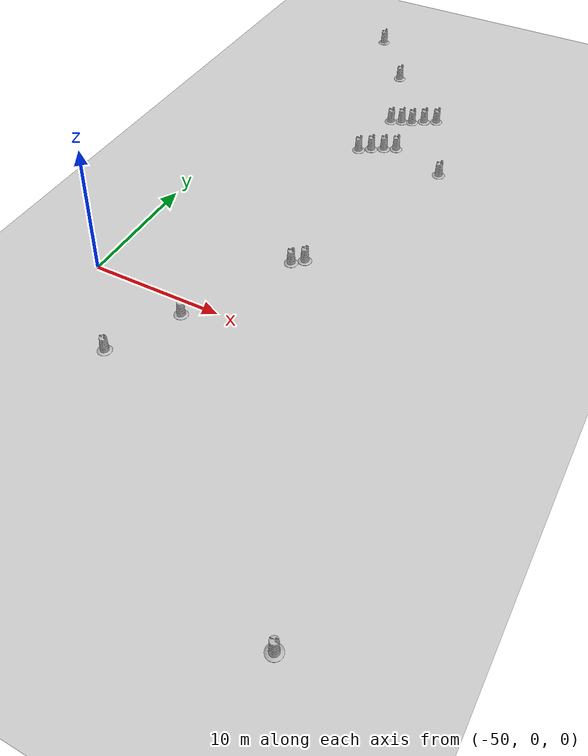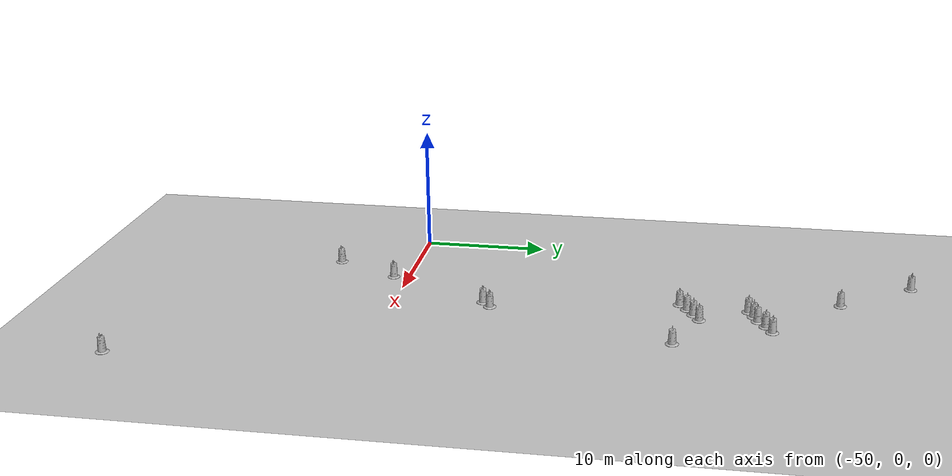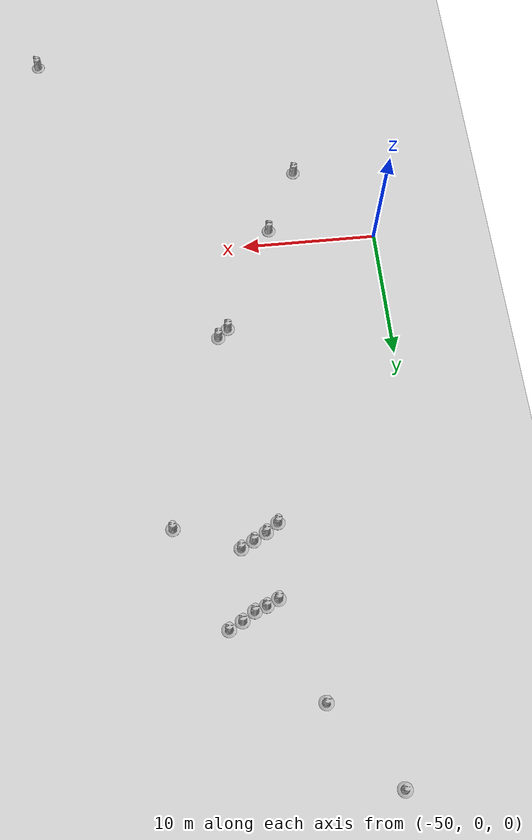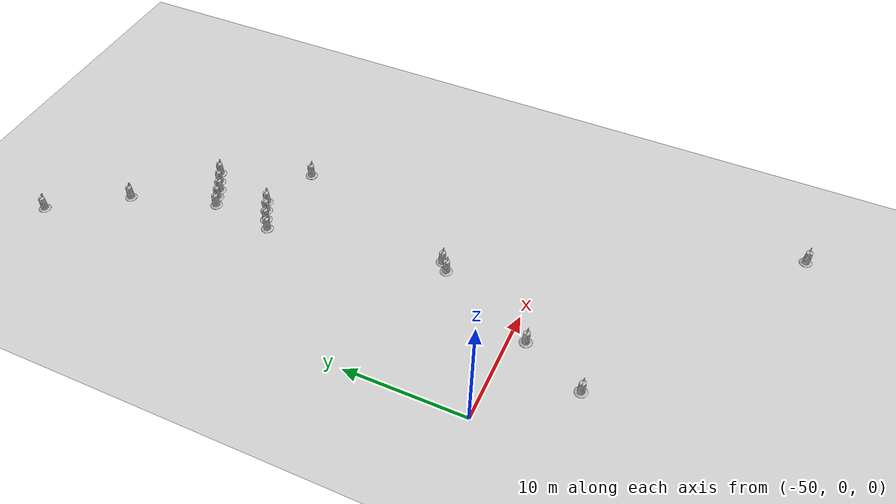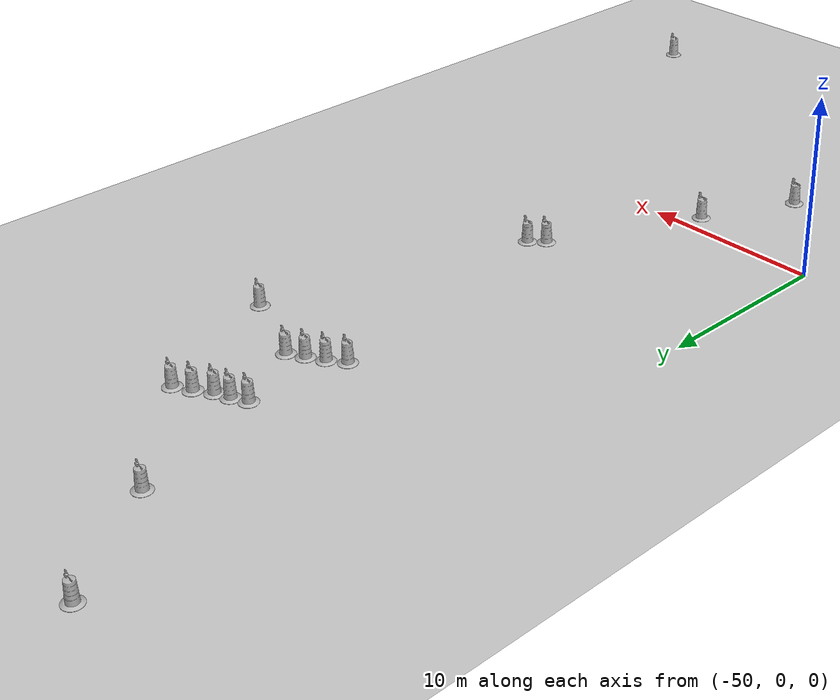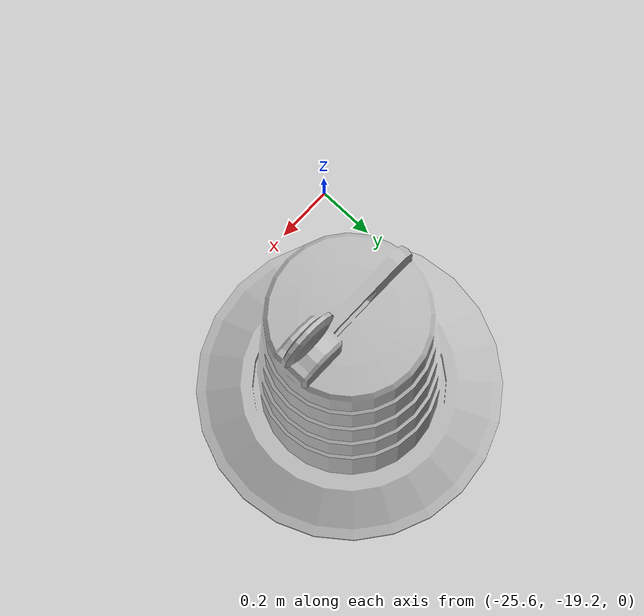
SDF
<sdf version="1.7">
 <world name="default">
  <model name="Course plane">
   <static>1</static>
   <link name="link">
    <collision name="collision">
     <geometry><plane><normal>0 0 1</normal><size>100 100</size></plane></geometry>
     <surface><friction><ode><mu>100</mu><mu2>50</mu2></ode></friction></surface>
    </collision>
    <visual name="visual">
     <cast_shadows>0</cast_shadows>
     <geometry><plane><normal>0 0 1</normal><size>100 100</size></plane></geometry>
     <material>
      <script>
       <uri>model://course_plane/materials/scripts</uri>
       <uri>model://course_plane/materials/textures</uri>
       <name>vrc/Image</name>
      </script>
     </material>
    </visual>
   </link>
  </model>
  <light name="sun" type="directional">
   <pose>0 0 10 0 -0 0</pose>
   <diffuse>0.8 0.8 0.8 1</diffuse>
   <specular>0.2 0.2 0.2 1</specular>
   <attenuation>
    <range>1000</range>
    <constant>0.9</constant>
    <linear>0.01</linear>
    <quadratic>0.001</quadratic>
   </attenuation>
   <direction>-0.5 0.1 -0.9</direction>
   <spot><inner_angle>0</inner_angle><outer_angle>0</outer_angle><falloff>0</falloff></spot>
  </light>
  <gravity>0 0 -9.8</gravity>
  <magnetic_field>6e-06 2.3e-05 -4.2e-05</magnetic_field>
  <atmosphere type="adiabatic"/>
  <physics type="ode">
   <max_step_size>0.001</max_step_size>
   <real_time_factor>1</real_time_factor>
   <real_time_update_rate>1000</real_time_update_rate>
  </physics>
  <scene><ambient>0.4 0.4 0.4 1</ambient><background>0.7 0.7 0.7 1</background><shadows>1</shadows></scene>
  <spherical_coordinates>
   <surface_model>EARTH_WGS84</surface_model>
   <latitude_deg>0</latitude_deg>
   <longitude_deg>0</longitude_deg>
   <elevation>0</elevation>
   <heading_deg>0</heading_deg>
  </spherical_coordinates>
  <model name="Construction Barrel">
   <link name="link">
    <inertial>
     <pose>0 0 0.4 0 -0 0</pose>
     <mass>500</mass>
     <inertia><ixx>51.2096</ixx><iyy>51.2096</iyy><izz>25</izz><ixy>0</ixy><ixz>0</ixz><iyz>0</iyz></inertia>
    </inertial>
    <collision name="collision">
     <geometry><mesh><uri>model://construction_barrel/meshes/construction_barrel.dae</uri></mesh></geometry>
    </collision>
    <visual name="visual">
     <geometry><mesh><uri>model://construction_barrel/meshes/construction_barrel.dae</uri></mesh></geometry>
    </visual>
   </link>
   <pose>-39.9984 22.2295 0 0 -0 0</pose>
  </model>
  <model name="Construction Barrel_0">
   <link name="link">
    <inertial>
     <pose>0 0 0.4 0 -0 0</pose>
     <mass>500</mass>
     <inertia><ixx>51.2096</ixx><iyy>51.2096</iyy><izz>25</izz><ixy>0</ixy><ixz>0</ixz><iyz>0</iyz></inertia>
    </inertial>
    <collision name="collision">
     <geometry><mesh><uri>model://construction_barrel/meshes/construction_barrel.dae</uri></mesh></geometry>
    </collision>
    <visual name="visual">
     <geometry><mesh><uri>model://construction_barrel/meshes/construction_barrel.dae</uri></mesh></geometry>
    </visual>
   </link>
   <pose>-39.133 22.8512 0 0 -0 0</pose>
  </model>
  <model name="Construction Barrel_1">
   <link name="link">
    <inertial>
     <pose>0 0 0.4 0 -0 0</pose>
     <mass>500</mass>
     <inertia><ixx>51.2096</ixx><iyy>51.2096</iyy><izz>25</izz><ixy>0</ixy><ixz>0</ixz><iyz>0</iyz></inertia>
    </inertial>
    <collision name="collision">
     <geometry><mesh><uri>model://construction_barrel/meshes/construction_barrel.dae</uri></mesh></geometry>
    </collision>
    <visual name="visual">
     <geometry><mesh><uri>model://construction_barrel/meshes/construction_barrel.dae</uri></mesh></geometry>
    </visual>
   </link>
   <pose>-38.2201 23.3651 0 0 -0 0</pose>
  </model>
  <model name="Construction Barrel_2">
   <link name="link">
    <inertial>
     <pose>0 0 0.4 0 -0 0</pose>
     <mass>500</mass>
     <inertia><ixx>51.2096</ixx><iyy>51.2096</iyy><izz>25</izz><ixy>0</ixy><ixz>0</ixz><iyz>0</iyz></inertia>
    </inertial>
    <collision name="collision">
     <geometry><mesh><uri>model://construction_barrel/meshes/construction_barrel.dae</uri></mesh></geometry>
    </collision>
    <visual name="visual">
     <geometry><mesh><uri>model://construction_barrel/meshes/construction_barrel.dae</uri></mesh></geometry>
    </visual>
   </link>
   <pose>-37.3148 23.8407 0 0 -0 0</pose>
  </model>
  <model name="Construction Barrel_3">
   <link name="link">
    <inertial>
     <pose>0 0 0.4 0 -0 0</pose>
     <mass>500</mass>
     <inertia><ixx>51.2096</ixx><iyy>51.2096</iyy><izz>25</izz><ixy>0</ixy><ixz>0</ixz><iyz>0</iyz></inertia>
    </inertial>
    <collision name="collision">
     <geometry><mesh><uri>model://construction_barrel/meshes/construction_barrel.dae</uri></mesh></geometry>
    </collision>
    <visual name="visual">
     <geometry><mesh><uri>model://construction_barrel/meshes/construction_barrel.dae</uri></mesh></geometry>
    </visual>
   </link>
   <pose>-39.4157 27.5502 0 0 -0 0</pose>
  </model>
  <model name="Construction Barrel_4">
   <link name="link">
    <inertial>
     <pose>0 0 0.4 0 -0 0</pose>
     <mass>500</mass>
     <inertia><ixx>51.2096</ixx><iyy>51.2096</iyy><izz>25</izz><ixy>0</ixy><ixz>0</ixz><iyz>0</iyz></inertia>
    </inertial>
    <collision name="collision">
     <geometry><mesh><uri>model://construction_barrel/meshes/construction_barrel.dae</uri></mesh></geometry>
    </collision>
    <visual name="visual">
     <geometry><mesh><uri>model://construction_barrel/meshes/construction_barrel.dae</uri></mesh></geometry>
    </visual>
   </link>
   <pose>-38.5772 27.9476 0 0 -0 0</pose>
  </model>
  <model name="Construction Barrel_5">
   <link name="link">
    <inertial>
     <pose>0 0 0.4 0 -0 0</pose>
     <mass>500</mass>
     <inertia><ixx>51.2096</ixx><iyy>51.2096</iyy><izz>25</izz><ixy>0</ixy><ixz>0</ixz><iyz>0</iyz></inertia>
    </inertial>
    <collision name="collision">
     <geometry><mesh><uri>model://construction_barrel/meshes/construction_barrel.dae</uri></mesh></geometry>
    </collision>
    <visual name="visual">
     <geometry><mesh><uri>model://construction_barrel/meshes/construction_barrel.dae</uri></mesh></geometry>
    </visual>
   </link>
   <pose>-37.7462 28.2496 0 0 -0 0</pose>
  </model>
  <model name="Construction Barrel_6">
   <link name="link">
    <inertial>
     <pose>0 0 0.4 0 -0 0</pose>
     <mass>500</mass>
     <inertia><ixx>51.2096</ixx><iyy>51.2096</iyy><izz>25</izz><ixy>0</ixy><ixz>0</ixz><iyz>0</iyz></inertia>
    </inertial>
    <collision name="collision">
     <geometry><mesh><uri>model://construction_barrel/meshes/construction_barrel.dae</uri></mesh></geometry>
    </collision>
    <visual name="visual">
     <geometry><mesh><uri>model://construction_barrel/meshes/construction_barrel.dae</uri></mesh></geometry>
    </visual>
   </link>
   <pose>-36.8699 28.8403 0 0 -0 0</pose>
  </model>
  <model name="Construction Barrel_7">
   <link name="link">
    <inertial>
     <pose>0 0 0.4 0 -0 0</pose>
     <mass>500</mass>
     <inertia><ixx>51.2096</ixx><iyy>51.2096</iyy><izz>25</izz><ixy>0</ixy><ixz>0</ixz><iyz>0</iyz></inertia>
    </inertial>
    <collision name="collision">
     <geometry><mesh><uri>model://construction_barrel/meshes/construction_barrel.dae</uri></mesh></geometry>
    </collision>
    <visual name="visual">
     <geometry><mesh><uri>model://construction_barrel/meshes/construction_barrel.dae</uri></mesh></geometry>
    </visual>
   </link>
   <pose>-35.9274 29.3376 0 0 -0 0</pose>
  </model>
  <model name="Construction Barrel_8">
   <link name="link">
    <inertial>
     <pose>0 0 0.4 0 -0 0</pose>
     <mass>500</mass>
     <inertia><ixx>51.2096</ixx><iyy>51.2096</iyy><izz>25</izz><ixy>0</ixy><ixz>0</ixz><iyz>0</iyz></inertia>
    </inertial>
    <collision name="collision">
     <geometry><mesh><uri>model://construction_barrel/meshes/construction_barrel.dae</uri></mesh></geometry>
    </collision>
    <visual name="visual">
     <geometry><mesh><uri>model://construction_barrel/meshes/construction_barrel.dae</uri></mesh></geometry>
    </visual>
   </link>
   <pose>-41.6533 34.6445 0 0 -0 0</pose>
  </model>
  <model name="Construction Barrel_9">
   <link name="link">
    <inertial>
     <pose>0 0 0.4 0 -0 0</pose>
     <mass>500</mass>
     <inertia><ixx>51.2096</ixx><iyy>51.2096</iyy><izz>25</izz><ixy>0</ixy><ixz>0</ixz><iyz>0</iyz></inertia>
    </inertial>
    <collision name="collision">
     <geometry><mesh><uri>model://construction_barrel/meshes/construction_barrel.dae</uri></mesh></geometry>
    </collision>
    <visual name="visual">
     <geometry><mesh><uri>model://construction_barrel/meshes/construction_barrel.dae</uri></mesh></geometry>
    </visual>
   </link>
   <pose>-45.8112 40.4199 0 0 -0 0</pose>
  </model>
  <model name="Construction Barrel_10">
   <link name="link">
    <inertial>
     <pose>0 0 0.4 0 -0 0</pose>
     <mass>500</mass>
     <inertia><ixx>51.2096</ixx><iyy>51.2096</iyy><izz>25</izz><ixy>0</ixy><ixz>0</ixz><iyz>0</iyz></inertia>
    </inertial>
    <collision name="collision">
     <geometry><mesh><uri>model://construction_barrel/meshes/construction_barrel.dae</uri></mesh></geometry>
    </collision>
    <visual name="visual">
     <geometry><mesh><uri>model://construction_barrel/meshes/construction_barrel.dae</uri></mesh></geometry>
    </visual>
   </link>
   <pose>-32.8248 22.0402 0 0 -0 0</pose>
  </model>
  <model name="Construction Barrel_11">
   <link name="link">
    <inertial>
     <pose>0 0 0.4 0 -0 0</pose>
     <mass>500</mass>
     <inertia><ixx>51.2096</ixx><iyy>51.2096</iyy><izz>25</izz><ixy>0</ixy><ixz>0</ixz><iyz>0</iyz></inertia>
    </inertial>
    <collision name="collision">
     <geometry><mesh><uri>model://construction_barrel/meshes/construction_barrel.dae</uri></mesh></geometry>
    </collision>
    <visual name="visual">
     <geometry><mesh><uri>model://construction_barrel/meshes/construction_barrel.dae</uri></mesh></geometry>
    </visual>
   </link>
   <pose>-37.3557 7.62987 0 0 -0 0</pose>
  </model>
  <model name="Construction Barrel_12">
   <link name="link">
    <inertial>
     <pose>0 0 0.4 0 -0 0</pose>
     <mass>500</mass>
     <inertia><ixx>51.2096</ixx><iyy>51.2096</iyy><izz>25</izz><ixy>0</ixy><ixz>0</ixz><iyz>0</iyz></inertia>
    </inertial>
    <collision name="collision">
     <geometry><mesh><uri>model://construction_barrel/meshes/construction_barrel.dae</uri></mesh></geometry>
    </collision>
    <visual name="visual">
     <geometry><mesh><uri>model://construction_barrel/meshes/construction_barrel.dae</uri></mesh></geometry>
    </visual>
   </link>
   <pose>-38.1202 6.95483 0 0 -0 0</pose>
  </model>
  <model name="Construction Barrel_13">
   <link name="link">
    <inertial>
     <pose>0 0 0.4 0 -0 0</pose>
     <mass>500</mass>
     <inertia><ixx>51.2096</ixx><iyy>51.2096</iyy><izz>25</izz><ixy>0</ixy><ixz>0</ixz><iyz>0</iyz></inertia>
    </inertial>
    <collision name="collision">
     <geometry><mesh><uri>model://construction_barrel/meshes/construction_barrel.dae</uri></mesh></geometry>
    </collision>
    <visual name="visual">
     <geometry><mesh><uri>model://construction_barrel/meshes/construction_barrel.dae</uri></mesh></geometry>
    </visual>
   </link>
   <pose>-42.0997 -1.23783 0 0 -0 0</pose>
  </model>
  <model name="Construction Barrel_14">
   <link name="link">
    <inertial>
     <pose>0 0 0.4 0 -0 0</pose>
     <mass>500</mass>
     <inertia><ixx>51.2096</ixx><iyy>51.2096</iyy><izz>25</izz><ixy>0</ixy><ixz>0</ixz><iyz>0</iyz></inertia>
    </inertial>
    <collision name="collision">
     <geometry><mesh><uri>model://construction_barrel/meshes/construction_barrel.dae</uri></mesh></geometry>
    </collision>
    <visual name="visual">
     <geometry><mesh><uri>model://construction_barrel/meshes/construction_barrel.dae</uri></mesh></geometry>
    </visual>
   </link>
   <pose>-44.6165 -6.36201 0 0 -0 0</pose>
  </model>
  <model name="Construction Barrel_15">
   <link name="link">
    <inertial>
     <pose>0 0 0.4 0 -0 0</pose>
     <mass>500</mass>
     <inertia><ixx>51.2096</ixx><iyy>51.2096</iyy><izz>25</izz><ixy>0</ixy><ixz>0</ixz><iyz>0</iyz></inertia>
    </inertial>
    <collision name="collision">
     <geometry><mesh><uri>model://construction_barrel/meshes/construction_barrel.dae</uri></mesh></geometry>
    </collision>
    <visual name="visual">
     <geometry><mesh><uri>model://construction_barrel/meshes/construction_barrel.dae</uri></mesh></geometry>
    </visual>
   </link>
   <pose>-25.1701 -18.6804 0 0 -0 0</pose>
  </model>
 </world>
</sdf>
